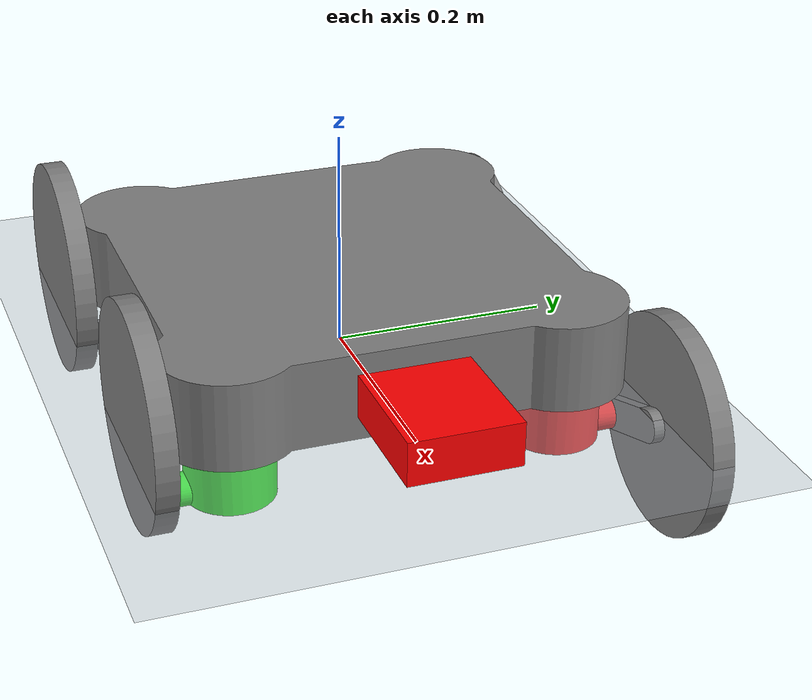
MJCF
<mujoco model="generated_robot">
  <compiler angle="radian" eulerseq="xyz" autolimits="true" balanceinertia="true" boundinertia="1e-8" />
  <visual>
    <headlight ambient="0.12 0.12 0.12" diffuse="0.0 0.0 0.0" specular="0.0 0.0 0.0" />
    <quality shadowsize="4096" />
    <global offwidth="1920" offheight="1080" />
    <map shadowclip="0.5" shadowscale="0.8" />
    <rgba haze="0.15 0.25 0.35 1" />
  </visual>
  <asset>
    <mesh name="part_001_solid_001" file="meshes/part_001_solid_001.stl" scale="0.001 0.001 0.001" />
    <mesh name="part_002_solid_002" file="meshes/part_002_solid_002.stl" scale="0.001 0.001 0.001" />
    <mesh name="part_003_solid_003" file="meshes/part_003_solid_003.stl" scale="0.001 0.001 0.001" />
    <mesh name="part_004_solid_004" file="meshes/part_004_solid_004.stl" scale="0.001 0.001 0.001" />
    <mesh name="part_007_solid_007" file="meshes/part_007_solid_007.stl" scale="0.001 0.001 0.001" />
    <mesh name="part_010_solid_010" file="meshes/part_010_solid_010.stl" scale="0.001 0.001 0.001" />
    <mesh name="part_013_solid_013" file="meshes/part_013_solid_013.stl" scale="0.001 0.001 0.001" />
    <mesh name="part_005_solid_005" file="meshes/part_005_solid_005.stl" scale="0.001 0.001 0.001" />
    <mesh name="part_008_solid_008" file="meshes/part_008_solid_008.stl" scale="0.001 0.001 0.001" />
    <mesh name="part_011_solid_011" file="meshes/part_011_solid_011.stl" scale="0.001 0.001 0.001" />
    <mesh name="part_006_solid_006" file="meshes/part_006_solid_006.stl" scale="0.001 0.001 0.001" />
    <mesh name="part_009_solid_009" file="meshes/part_009_solid_009.stl" scale="0.001 0.001 0.001" />
    <mesh name="part_012_solid_012" file="meshes/part_012_solid_012.stl" scale="0.001 0.001 0.001" />

    <texture name="skybox" type="skybox" builtin="gradient" rgb1="0.35 0.55 0.75" rgb2="0.82 0.87 0.92" width="512" height="512" />
    <texture name="grid" type="2d" builtin="checker" width="512" height="512" rgb1="0.66 0.68 0.71" rgb2="0.56 0.58 0.61" />
    <material name="grid_mat" texture="grid" texrepeat="10 10" reflectance="0.08" specular="0.15" />
  </asset>
  <worldbody>
    <!-- Lighting: Studio-grade Natural Outdoor Setup -->
    <light name="sun" directional="true" pos="0 0 10" dir="0.4 0.6 -1.2" diffuse="0.68 0.68 0.65" specular="0.25 0.25 0.25" castshadow="true" />
    <light name="sky_fill" directional="true" pos="0 0 10" dir="-0.4 -0.5 -0.8" diffuse="0.24 0.26 0.30" specular="0.02 0.02 0.02" castshadow="false" />
    <light name="ground_bounce" directional="true" pos="0 0 -5" dir="0 0 1" diffuse="0.1 0.1 0.1" specular="0 0 0" castshadow="false" />

    <!-- 添加默认跟随摄像机 -->
    <camera name="track_cam" mode="trackcom" pos="-1 0 0.5" xyaxes="0 -1 0 1 0 2" />
    <camera name="side_cam" mode="trackcom" pos="-1.3 -1.1 0.7" xyaxes="0.65 -0.76 0 0.38 0.33 0.87" />

    <geom name="floor" type="plane" size="5 5 0.1" material="grid_mat" contype="0" conaffinity="0" />

    <body name="chassis" pos="0 0 0">
      <freejoint name="root" />
      <inertial pos="0.0019047851 0 0.049093719" mass="14.996783" quat="1 0 0 0" diaginertia="0.20788229 0.20788229 0.39976801" />
      <!-- 增加一个红色的车鼻(Nose)指示正前方 -->
      <geom name="front_nose" type="box" size="0.16 0.05 0.02" pos="0.15 0 0.05" rgba="1 0 0 1" contype="0" conaffinity="0" />

      <geom name="chassis_mesh_1" type="mesh" mesh="part_001_solid_001" pos="0 0.0090937195 0.0019047852" euler="0 0 0" group="1" contype="0" conaffinity="0" />
      <body name="Steering_joint_LF" pos="0.15190479 0.15 0.0090937195" euler="0 0 1.5707963">
        <joint name="Steering_joint_LF" type="hinge" pos="0 0 0" axis="0 0 1"  actuatorfrcrange="-200 200" actuatorfrclimited="true" />
        <inertial pos="0.0016718354 -2.1252266e-06 -0.028065513" mass="0.34155445" quat="0.9981442 4.7558172e-05 0.060894316 -0.00020962731" diaginertia="0.00021713852 0.00024338633 0.00028958694" />
        <geom name="Steering_joint_LF_mesh_1" type="mesh" mesh="part_002_solid_002" rgba="1 0.2 0.2 1"  pos="-0.14090628 0.15190479 -0.0071889343" euler="0 0 -1.5707963" group="1" contype="0" conaffinity="0" />
        <body name="Posture_control_joint_LF" pos="0.046069665 0 -0.045" euler="-1.5707963 -1.5707963 0">
          <joint name="Posture_control_joint_LF" type="hinge" pos="0 0 0" axis="0 0 1" actuatorfrcrange="-200 200" actuatorfrclimited="true" />
          <inertial pos="-0.035491101 -0.01210916 -0.013991309" mass="0.035399978" quat="0.98651643 0 0 0.16366223" diaginertia="2.7879217e-06 2.9222798e-05 3.142072e-05" />
          <geom name="Posture_control_joint_LF_mesh_1" type="mesh" mesh="part_003_solid_003" pos="0.15190479 -0.037811066 0.18697595" euler="1.5707963 0 -3.1415927" group="1" contype="0" conaffinity="0" />
          <body name="Wheel_joint_LF" pos="-0.070982202 -0.02421832 -0.018991302" euler="3.1415927 0 0">
            <joint name="Wheel_joint_LF" type="hinge" pos="0 0 0" axis="0 0 1" actuatorfrcrange="-200 200" actuatorfrclimited="true" />
            <inertial pos="1.2736975e-10 0 0.010000008" mass="0.75153473" quat="0.99861458 0 0 0.052620487" diaginertia="0.0018977931 0.001897793 0.0037454838" />
            <geom name="Wheel_joint_LF_mesh_1" type="mesh" mesh="part_004_solid_004" pos="0.22288699 0.013592745 -0.20596725" euler="-1.5707963 0 -3.1415927" group="1" contype="0" conaffinity="0" friction="1 0.005 0.0001" />
          </body>
        </body>
      </body>
      <body name="Steering_joint_RF" pos="0.15190479 -0.15 0.0090937195" euler="0 0 1.5707963">
        <joint name="Steering_joint_RF" type="hinge" pos="0 0 0" axis="0 0 1"  actuatorfrcrange="-200 200" actuatorfrclimited="true" />
        <inertial pos="-0.0016718342 2.12478e-06 -0.028065513" mass="0.34155445" quat="0.9981442 -4.7530235e-05 -0.060894308 -0.00020965858" diaginertia="0.00021713852 0.00024338633 0.00028958695" />
        <geom name="Steering_joint_RF_mesh_1" type="mesh" mesh="part_007_solid_007" rgba="0.2 1 0.2 1"  pos="0.15909372 0.15190479 -0.0071889343" euler="0 0 -1.5707963" group="1" contype="0" conaffinity="0" />
        <body name="Posture_control_joint_RF" pos="-0.060060967 0 -0.045" euler="1.5707963 1.5707963 0">
          <joint name="Posture_control_joint_RF" type="hinge" pos="0 0 0" axis="0 0 1" actuatorfrcrange="-200 200" actuatorfrclimited="true" />
          <inertial pos="0.0033361432 0.037351307 -7.573517e-09" mass="0.035399976" quat="0.99900822 0 0 -0.044526062" diaginertia="2.9222798e-05 2.7879213e-06 3.142072e-05" />
          <geom name="Posture_control_joint_RF_mesh_1" type="mesh" mesh="part_010_solid_010" pos="0.15190479 0.037811066 0.21915469" euler="-1.5707963 0 -3.1415927" group="1" contype="0" conaffinity="0" />
          <body name="Wheel_joint_RF" pos="0.0066722838 0.074702615 -0.005" euler="-3.1415927 0 0">
            <joint name="Wheel_joint_RF" type="hinge" pos="0 0 0" axis="0 0 1" actuatorfrcrange="-200 200" actuatorfrclimited="true" />
            <inertial pos="-9.5305775e-10 -3.2682827e-10 0.010000008" mass="0.75153475" quat="0.93536482 0 0 -0.3536844" diaginertia="0.0018977931 0.0018977931 0.003745484" />
            <geom name="Wheel_joint_RF_mesh_1" type="mesh" mesh="part_013_solid_013" pos="0.1452325 0.036891549 -0.22415469" euler="1.5707963 0 -3.1415927" group="1" contype="0" conaffinity="0" friction="1 0.005 0.0001" />
          </body>
        </body>
      </body>
      <body name="Steering_joint_LB" pos="-0.14809521 0.15 0.0090937195" euler="0 0 1.5707963">
        <joint name="Steering_joint_LB" type="hinge" pos="0 0 0" axis="0 0 1"  actuatorfrcrange="-200 200" actuatorfrclimited="true" />
        <inertial pos="0.0016718342 -2.1248272e-06 -0.028065513" mass="0.34155446" quat="0.9981442 4.7518247e-05 0.060894305 -0.00020975219" diaginertia="0.00021713853 0.00024338634 0.00028958696" />
        <geom name="Steering_joint_LB_mesh_1" type="mesh" mesh="part_005_solid_005" pos="-0.14090628 -0.14809521 -0.0071889343" euler="0 0 -1.5707963" group="1" contype="0" conaffinity="0" />
        <body name="Posture_control_joint_LB" pos="0.060060967 0 -0.045" euler="-1.5707963 -1.5707963 0">
          <joint name="Posture_control_joint_LB" type="hinge" pos="0 0 0" axis="0 0 1" actuatorfrcrange="-200 200" actuatorfrclimited="true" />
          <inertial pos="0.037472079 0.0014468008 -7.5886705e-09" mass="0.03539998" quat="0.99981385 0 0 0.019294275" diaginertia="2.7879221e-06 2.9222802e-05 3.1420724e-05" />
          <geom name="Posture_control_joint_LB_mesh_1" type="mesh" mesh="part_008_solid_008" pos="-0.14809521 -0.037811066 0.20096725" euler="1.5707963 0 -3.1415927" group="1" contype="0" conaffinity="0" />
          <body name="Wheel_joint_LB" pos="0.07494416 0.0028936022 -0.005" euler="3.1415927 0 0">
            <joint name="Wheel_joint_LB" type="hinge" pos="0 0 0" axis="0 0 1" actuatorfrcrange="-200 200" actuatorfrclimited="true" />
            <inertial pos="0 4.5386143e-10 0.010000008" mass="0.75153474" quat="0.93171755 0 0 -0.36318371" diaginertia="0.0018977931 0.001897793 0.0037454838" />
            <geom name="Wheel_joint_LB_mesh_1" type="mesh" mesh="part_011_solid_011" pos="-0.22303937 0.040704668 -0.20596725" euler="-1.5707963 0 -3.1415927" group="1" contype="0" conaffinity="0" friction="1 0.005 0.0001" />
          </body>
        </body>
      </body>
      <body name="Steering_joint_RB" pos="-0.14809521 -0.15 0.0090937195" euler="0 0 1.5707963">
        <joint name="Steering_joint_RB" type="hinge" pos="0 0 0" axis="0 0 1"  actuatorfrcrange="-200 200" actuatorfrclimited="true" />
        <inertial pos="-0.0016718354 2.1246811e-06 -0.028065513" mass="0.34155445" quat="0.9981442 -4.756718e-05 -0.06089431 -0.00020963633" diaginertia="0.00021713853 0.00024338633 0.00028958695" />
        <geom name="Steering_joint_RB_mesh_1" type="mesh" mesh="part_006_solid_006" pos="0.15909372 -0.14809521 -0.0071889343" euler="0 0 -1.5707963" group="1" contype="0" conaffinity="0" />
        <body name="Posture_control_joint_RB" pos="-0.060060967 0 -0.045" euler="1.5707963 1.5707963 0">
          <joint name="Posture_control_joint_RB" type="hinge" pos="0 0 0" axis="0 0 1" actuatorfrcrange="-200 200" actuatorfrclimited="true" />
          <inertial pos="0.0035230026 0.037334146 -7.5735161e-09" mass="0.035399973" quat="0.99889369 0 0 -0.047025398" diaginertia="2.9222798e-05 2.7879205e-06 3.1420719e-05" />
          <geom name="Posture_control_joint_RB_mesh_1" type="mesh" mesh="part_009_solid_009" pos="-0.14809521 0.037811066 0.21915469" euler="-1.5707963 0 -3.1415927" group="1" contype="0" conaffinity="0" />
          <body name="Wheel_joint_RB" pos="0.0070460026 0.074668292 -0.005" euler="-3.1415927 0 0">
            <joint name="Wheel_joint_RB" type="hinge" pos="0 0 0" axis="0 0 1" actuatorfrcrange="-200 200" actuatorfrclimited="true" />
            <inertial pos="-1.2465447e-09 -5.7382597e-10 0.010000008" mass="0.75153475" quat="0.99454652 0 0 -0.10429394" diaginertia="0.0018977932 0.0018977931 0.003745484" />
            <geom name="Wheel_joint_RB_mesh_1" type="mesh" mesh="part_012_solid_012" pos="-0.15514122 0.036857226 -0.22415469" euler="1.5707963 0 -3.1415927" group="1" contype="0" conaffinity="0" friction="1 0.005 0.0001" />
          </body>
        </body>
      </body>
    </body>
  </worldbody>
  <keyframe>
    <key name="home" qpos="0 0 0.35 1 0 0 0 -0.0000 -1.9164 -3.5443 0.1599 -3.0159 1.8035 -0.0013 1.5080 4.1867 -0.0069 -3.0474 -0.7472" />
  </keyframe>
  <actuator>
    <position name="act_steer_FL" joint="Steering_joint_LF" kp="300" kv="30" ctrllimited="true" ctrlrange="-3.14 3.14" />
    <position name="act_steer_FR" joint="Steering_joint_RF" kp="300" kv="30" ctrllimited="true" ctrlrange="-3.14 3.14" />
    <position name="act_steer_RL" joint="Steering_joint_LB" kp="300" kv="30" ctrllimited="true" ctrlrange="-3.14 3.14" />
    <position name="act_steer_RR" joint="Steering_joint_RB" kp="300" kv="30" ctrllimited="true" ctrlrange="-3.14 3.14" />
    <position name="act_ecc_FL" joint="Posture_control_joint_LF" kp="300" kv="30" ctrllimited="false" />
    <position name="act_ecc_FR" joint="Posture_control_joint_RF" kp="300" kv="30" ctrllimited="false" />
    <position name="act_ecc_RL" joint="Posture_control_joint_LB" kp="300" kv="30" ctrllimited="false" />
    <position name="act_ecc_RR" joint="Posture_control_joint_RB" kp="300" kv="30" ctrllimited="false" />
    <velocity name="act_wheel_FL" joint="Wheel_joint_LF" kv="10" ctrllimited="true" ctrlrange="-50 50" />
    <velocity name="act_wheel_FR" joint="Wheel_joint_RF" kv="10" ctrllimited="true" ctrlrange="-50 50" />
    <velocity name="act_wheel_RL" joint="Wheel_joint_LB" kv="10" ctrllimited="true" ctrlrange="-50 50" />
    <velocity name="act_wheel_RR" joint="Wheel_joint_RB" kv="10" ctrllimited="true" ctrlrange="-50 50" />
  </actuator>
</mujoco>
